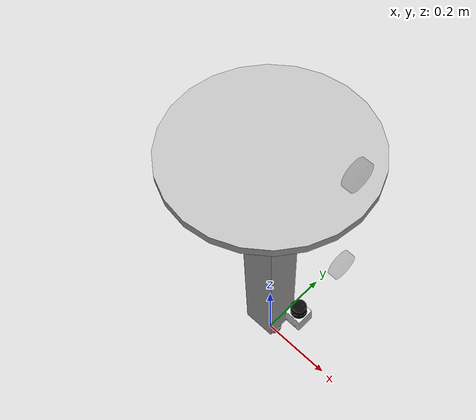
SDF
<?xml version="1.0" ?>
<sdf version="1.4">

	<model name="robotino_pyro">

	<!-- Robotino 3 base -->
	<include>
		<uri>model://robotino3</uri>
		<pose>0 0 0 0 0 1.5775</pose>
	</include>

	<!-- Hokuyo Laser -->
	<include>
		<uri>model://hokuyo_ros</uri>
		<pose>0.1 0 0.235 0 0 0</pose>
	</include>
	<joint name="hokuyo_joint" type="revolute">
		<parent>robotino3::body</parent>
		<child>hokuyo::body</child>
		<axis>
			<xyz>0 0 1</xyz>
			<limit>
				<upper>0</upper>
				<lower>0</lower>
			</limit>
		</axis>
	</joint>

	<!-- tower camera (for ARTAG) -->
	<include>
		<uri>model://C270_ros</uri>
		<pose>0.2 0 0.6 0 0 0</pose>
	</include>
	<joint name="tower_camera_joint" type="revolute">
		<parent>robotino3::body</parent>
		<child>C270::body</child>
		<axis>
			<xyz>0 0 0.3</xyz>
			<limit>
				<upper>0</upper>
				<lower>0</lower>
			</limit>
		</axis>
	</joint>

	<!-- platform camera (for light signals) -->
	<include>
		<uri>model://C920_ros</uri>
		<pose>0 0 0.9 0 0 0</pose>
	</include>
	<joint name="platform_camera_joint" type="revolute">
		<parent>robotino3::body</parent>
		<child>C920::body</child>
		<axis>
			<xyz>0 0 1</xyz>
			<limit>
				<upper>0</upper>
				<lower>0</lower>
			</limit>
		</axis>
	</joint>

	<include>
		<name>gripper</name>
		<uri>model://gripper_pyro</uri>
		<pose>0.285 0 0.92 0 0 0</pose>
	</include>
	<joint name="gripper_joint" type="revolute">
		<child>gripper::link</child>
		<parent>robotino3::body</parent>
		<axis>
			<xyz>0 0 1</xyz>
			<limit>
				<upper>0</upper>
				<lower>0</lower>
			</limit>
		</axis>
	</joint>

	</model>
</sdf>

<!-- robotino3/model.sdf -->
<sdf version="1.4">
  <model name="robotino3">
    <static>false</static>
    <link name="body">
      <pose>0 0 0.001 0 0 0</pose>
      <gravity>true</gravity>
      <inertial>
        <mass>30</mass>
        <pose>0 0 0.075 0 0 0</pose>
        <inertia>
	  <!-- according to http://en.wikipedia.org/wiki/List_of_moments_of_inertia for a solid cylinder of radius r=0.225, height h=0.15, mass m=30 -->
          <ixx>0.4359375</ixx>
          <ixy>0.0</ixy>
          <ixz>0.0</ixz>
          <iyy>0.4359375</iyy>
          <iyz>0.0</iyz>
          <izz>0.759375</izz>
        </inertia>
      </inertial>
      <visual name="body-visual">
        <pose>0.01 0 0.00 0 0 1.570795</pose>
        <geometry>
          <mesh>
            <uri>model://robotino3/meshes/robotino3.dae</uri>
            <scale>0.001 0.001 0.001</scale>
          </mesh>
        </geometry>
        <cast_shadows>false</cast_shadows>
      </visual>

      <collision name="body1-collision">
        <pose>0 0 0.735 0 0 0</pose>
        <geometry>
          <cylinder>
            <length>0.07</length>
            <radius>0.225</radius>
          </cylinder>
        </geometry>
        <surface>
          <friction>
            <ode>
              <mu>0.2</mu>
              <mu2>0.2</mu2>
              <slip1>0.8</slip1>
              <slip2>0.8</slip2>
            </ode>
          </friction>
          <contact>
            <ode>
              <min_depth>0.05</min_depth>
            </ode>
          </contact>
        </surface>
      </collision>

      <collision name="body2-collision">
        <pose>0 0 0.35 0 0 0</pose>
        <geometry>
          <cylinder>
            <length>0.68</length>
            <radius>0.06</radius>
          </cylinder>
        </geometry>
        <surface>
          <friction>
            <ode>
              <mu>0.2</mu>
              <mu2>0.2</mu2>
              <slip1>0.8</slip1>
              <slip2>0.8</slip2>
            </ode>
          </friction>
          <contact>
            <ode>
              <min_depth>0.05</min_depth>
            </ode>
          </contact>
        </surface>
      </collision>

      <collision name="body3-collision">
        <pose>0 0 0.035 0 0 0</pose>
        <geometry>
          <cylinder>
            <length>0.07</length>
            <radius>0.225</radius>
          </cylinder>
        </geometry>
        <surface>
          <friction>
            <ode>
              <mu>0.2</mu>
              <mu2>0.2</mu2>
              <slip1>0.8</slip1>
              <slip2>0.8</slip2>
            </ode>
          </friction>
          <contact>
            <ode>
              <min_depth>0.05</min_depth>
            </ode>
          </contact>
        </surface>
      </collision>
      <visual name="tower">
        <pose>0.00 0.00 0.43 0 0 0</pose>
        <geometry>
          <box>
            <size>0.09 0.09 0.70</size>
          </box>
        </geometry>
      </visual>
      <visual name="tower_plate">
        <pose>0 0 0.79 0 0 0</pose>
        <geometry>
          <cylinder>
            <length>0.02</length>
            <radius>0.225</radius>
          </cylinder>
        </geometry>
      </visual>
    </link>

    <plugin name="Motor" filename="libmotor.so"/>
    <plugin name="Gyro" filename="libgyro.so"/>
    <plugin name="GPS" filename="libgps.so"/>
    <plugin name="LightSignalDetection" filename="liblight_signal_detection.so"/>
  </model>
</sdf>

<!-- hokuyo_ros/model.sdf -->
<sdf version="1.4">
	<model name="hokuyo">
		<link name="body">
		<!-- Warning: Do not name the link "laser_link" it somehow as a buggy impact on the frameName
						, which is also called "laser_link" -->
			<inertial>
				<mass>0.1</mass>
			</inertial>
			<visual name="visual">
				<geometry>
					<mesh>
						<uri>model://hokuyo/meshes/hokuyo.dae</uri>
					</mesh>
				</geometry>
			</visual>
			<collision name="collision-base">
				<pose>0 0 -0.0145 0 0 0</pose>
				<geometry>
					<box>
						<size>0.05 0.05 0.041</size>
					</box>
				</geometry>
			</collision>
			<collision name="collision-top">
				<pose>0 0 0.0205 0 0 0</pose>
				<geometry>
					<cylinder>
						<radius>0.021</radius>
						<length>0.029</length>
					</cylinder>
				</geometry>
			</collision>

			<sensor name="laser" type="gpu_ray">
				<pose>0.01 0 0.0175 0 -0 0</pose>
				<visualize>true</visualize>
				<ray>
					<scan>
						<horizontal>
							<samples>682</samples>
							<resolution>1</resolution>
							<min_angle>-2.094395</min_angle>
							<max_angle>2.094395</max_angle>
						</horizontal>
					</scan>
					<range>
						<min>0.020</min>
						<max>5.600</max>
						<resolution>0.01</resolution>
					</range>
					<noise>
						<type>gaussian</type>
						<mean>0.0</mean>
						<stddev>0.01</stddev>
					</noise>
				</ray>

				<!-- Let robotNamespace empty - Use parent name as namespace -->
 				<plugin name="gazebo_ros_head_hokuyo_controller" filename="libgazebo_ros_gpu_laser.so">
					<robotNamespace/>
					<topicName>hardware/scan</topicName>
					<frameName>laser_link</frameName>
				</plugin>

				<always_on>1</always_on>
				<update_rate>10</update_rate>
			</sensor>
		</link>
	</model>
</sdf>

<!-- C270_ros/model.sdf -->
<sdf version="1.4">
	<model name="C270">
		<link name="body">

			<gravity>false</gravity>

			<inertial>
				<mass>0.02</mass>
			</inertial>

			<visual name="visual">
				<pose>0 0 0 0 1.6 0</pose>
				<geometry>
					<cylinder>
						<length>0.02</length>
						<radius>0.03</radius>
					</cylinder>
				</geometry>
				<cast_shadows>false</cast_shadows>
				<material>
					<ambient>0.0 0.0 0.0 0.1</ambient>
					<diffuse>0.0 0.0 0.0 0.11</diffuse>
				</material>
			</visual>

			<sensor type="camera" name="tower_camera">
				<update_rate>30.0</update_rate>
				<camera name="tower_camera">
					<horizontal_fov>1.3962634</horizontal_fov>
					<image>
						<width>1200</width>
						<height>700</height>
						<format>R8G8B8</format>
					</image>
					<clip>
						<near>0.02</near>
						<far>300</far>
					</clip>
				</camera>
				<!-- Let robotNamespace empty - Use parent name as namespace -->
				<plugin name="camera_controller" filename="libgazebo_ros_camera.so">
					<robotNamespace/>
					<alwaysOn>true</alwaysOn>
					<updateRate>0.0</updateRate>
					<cameraName>hardware/camera/tower_camera</cameraName>
					<imageTopicName>image_raw</imageTopicName>
					<cameraInfoTopicName>camera_info</cameraInfoTopicName>
					<frameName>tower_camera_link</frameName>
				</plugin>
			</sensor>
		</link>
	</model>
</sdf>

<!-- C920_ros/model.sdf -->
<sdf version="1.4">
	<model name="C920">
		<link name="body">

			<gravity>false</gravity>

			<inertial>
				<mass>0.02</mass>
			</inertial>

			<visual name="visual">
				<pose>0.2 0 0 0 1.6 0</pose>
				<geometry>
					<cylinder>
						<length>0.02</length>
						<radius>0.03</radius>
					</cylinder>
				</geometry>
				<cast_shadows>false</cast_shadows>
				<material>
					<ambient>0.0 0.0 0.0 0.1</ambient>
					<diffuse>0.0 0.0 0.0 0.11</diffuse>
				</material>
			</visual>

			<sensor type="camera" name="platform_camera">
				<update_rate>30.0</update_rate>
				<camera name="platform_camera">
					<horizontal_fov>1.3962634</horizontal_fov>
					<image>
						<width>1200</width>
						<height>700</height>
						<format>R8G8B8</format>
					</image>
					<clip>
						<near>0.02</near>
						<far>300</far>
					</clip>
				</camera>
				<!-- Let robotNamespace empty - Use parent name as namespace -->
				<plugin name="camera_controller" filename="libgazebo_ros_camera.so">
					<robotNamespace/>
					<topicName>hardware/scan</topicName>
					<alwaysOn>true</alwaysOn>
					<updateRate>0.0</updateRate>
					<cameraName>hardware/camera/platform_camera</cameraName>
					<imageTopicName>image_raw</imageTopicName>
					<cameraInfoTopicName>camera_info</cameraInfoTopicName>
					<frameName>platform_camera_link</frameName>
				</plugin>
			</sensor>
		</link>
	</model>
</sdf>

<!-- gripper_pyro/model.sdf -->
<sdf version="1.4">
	<model name="gripper_pyro">
		<link name="link">
		</link>

		<plugin name="gripper" filename="libgripper.so"/>
	</model>
</sdf>
